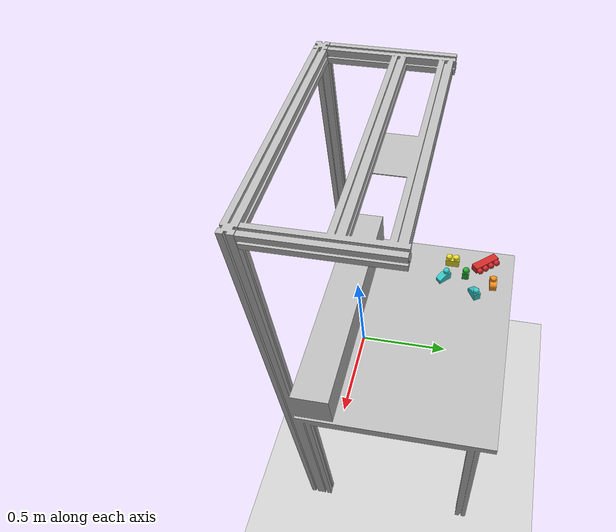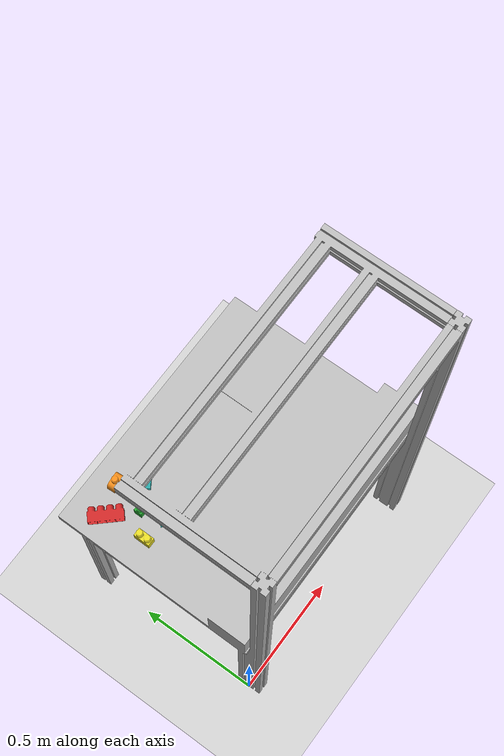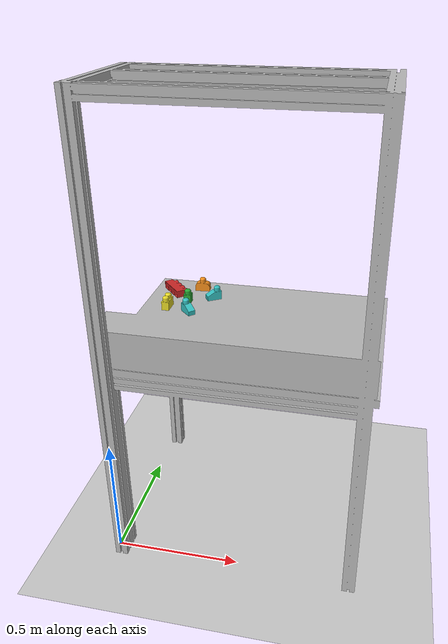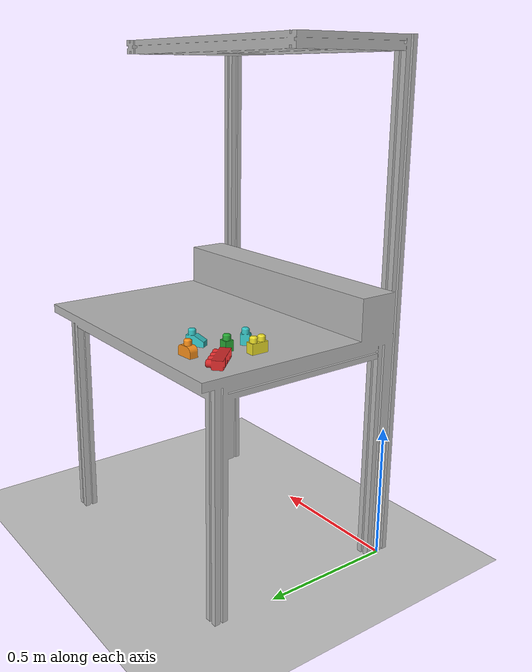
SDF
<?xml version="1.0" ?>
<sdf version="1.4">
  <world name="default">
    <plugin name="ros_link_attacher_plugin" filename="libgazebo_ros_link_attacher.so"/>
    <physics type='ode'>
      <gravity>0 0 -9.81</gravity>
      <!-- max step size has to be a multiple of the desired task rate-->
      <max_step_size>0.001</max_step_size>
      <real_time_factor>1</real_time_factor>
    </physics>
    <!-- A global light source -->
    <include>
      <uri>model://sun</uri>
    </include>
     <gui>
    <camera name="gzclient_camera">
      <pose>1. 3.2 2.2 0. 0.4 -1.75</pose>
    </camera>
    </gui>
    <!-- A ground plane -->
    <include>
      <uri>model://ground_plane</uri>
    </include>
    <include>
      <name>tavolo</name>
      <uri>model://tavolo</uri>
      <pose>0.0 0.0 0.0 0 0 0</pose>
    </include>

    <include>
      <name>X1-Y2-Z2-CHAMFER 1</name>
      <uri>model://X1-Y2-Z2-CHAMFER</uri>
      <pose>0.19 0.48 0.87 0 0 0.8</pose>
    </include>
    <include>
      <name>X1-Y2-Z2-CHAMFER 2</name>
      <uri>model://X1-Y2-Z2-CHAMFER</uri>
      <pose>0.26 0.63 0.87 0 0 -1</pose>
    </include>
    <include>
      <name>X1-Y2-Z2</name>
      <uri>model://X1-Y2-Z2</uri>
      <pose>0.09 0.51 0.87 0 0 0</pose>
    </include>
    <include>
      <name>X1-Y4-Z2</name>
      <uri>model://X1-Y4-Z2</uri>
      <pose>0.06 0.65 0.885 0 -1.5707963 -2.4</pose>
    </include>
    <include>
      <name>X1-Y2-Z2-TWINFILLET</name>
      <uri>model://X1-Y2-Z2-TWINFILLET</uri>
      <pose>0.19 0.71 0.87 0 0 -1.5</pose>
    </include>
    <include>
      <name>X1-Y1-Z2</name>
      <uri>model://X1-Y1-Z2</uri>
      <pose>0.16 0.58 0.87 0 0 0</pose>
    </include>

  </world>
</sdf>

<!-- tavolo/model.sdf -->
<sdf version="1.4">

<physics type="ode">

      <ode>

        <constraints>
          <contact_max_correcting_vel>0.1</contact_max_correcting_vel>
          <contact_surface_layer>0.0001</contact_surface_layer>
        </constraints>
      </ode>
	<max_contacts>10</max_contacts>
	</physics>

	<model name="tavolo">
	    <static>true</static>
		<link name="link">

		     <collision name="base">
			<pose>0.5 0.4 0.85 0 0 0</pose>
			<geometry>
			  <box>
			    <size>1 0.8 0.04</size>
			  </box>
			</geometry>

				<!-- see https://gazebosim.org/tutorials?tut=physics_params&cat=physics -->
				 <surface>
				  <bounce>
				    <restitution_coefficient>0.01</restitution_coefficient>
				    <threshold>5.0</threshold>
				  </bounce>
				  <friction>
				    <ode>
				      <mu>50</mu>
				      <mu2>70</mu2>
				    </ode>
				  </friction>
				  <contact>
				     <ode>
					<max_vel>0.1</max_vel>
					<min_depth>0.001</min_depth>
				        <kp>1000000.0</kp>
					<kd>1000.0</kd>
				      </ode>
			    	</contact>
				</surface>

		     	</collision>

	     			<collision name="box">
				<pose>0.5 0.08 0.95 0 0 0</pose>
				<geometry>
				  <box>
				    <size>1 0.15 0.15</size>
				  </box>
				</geometry>

				 <surface>
				  <bounce>
				    <restitution_coefficient>0.01</restitution_coefficient>
				    <threshold>5.0</threshold>
				  </bounce>
				  <friction>
				    <ode>
				      <mu>1</mu>
				      <mu2>1</mu2>
				    </ode>
				  </friction>
				  <contact>
				     <ode>
					<max_vel>0.1</max_vel>
					<min_depth>0.001</min_depth>
				        <kp>1000000.0</kp>
					<kd>1000.0</kd>
				      </ode>
			            </contact>
				</surface>

			      </collision>

			<visual name="visual">
				<geometry>
					<mesh>
						<uri>model://tavolo/mesh/tavolo.stl</uri>
                                                <scale>0.001 0.001 0.001</scale>
					</mesh>
				</geometry>
			</visual>
		</link>
	</model>
</sdf>

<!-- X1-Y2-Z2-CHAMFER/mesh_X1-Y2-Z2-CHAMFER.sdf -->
<sdf version="1.6">

         <model name="mesh">
             <static>0</static>
             <self_collide>0</self_collide>
             <allow_auto_disable>1</allow_auto_disable>

                <pose>0 0 0 0 -0 0</pose>

             <link name="link">

                 <gravity>1</gravity>
                 <self_collide>0</self_collide>
                 <kinematic>0</kinematic>

                <pose>0 0 0 0 -0 0</pose>

                <inertial>
                    <!-- Volume:  1.1813374000e-05 -->
                    <mass>0.001</mass>

                    <!-- Center of mass:  5.4000000000e-07  4.8881100000e-03  2.4580050000e-02 -->
                    <pose>0 0 0 0 0 0</pose>

                    <!-- Inertia matrix -->
                    <inertia>
                        <ixx>0</ixx>
                        <ixy>0</ixy>
                        <ixz>0</ixz>
                        <iyy>0</iyy>
                        <iyz>0</iyz>
                        <izz>0</izz>
                    </inertia>
                </inertial>

                 <collision name="collision">
                     <!--
                         Maximum number of contacts allowed between two entities.
                         This value overrides the max_contacts element defined in physics.
                     -->
                     <max_contacts>20</max_contacts>

                    <pose>0 0 0 0 -0 0</pose>

                     <geometry>
                         <mesh>
                             <uri>model://X1-Y2-Z2-CHAMFER/mesh/X1-Y2-Z2-CHAMFER.stl</uri>
                             <!-- Scaling factor applied to the mesh -->
                             <scale>1.0 1.0 1.0</scale>
                         </mesh>
                     </geometry>
                     <!-- http://sdformat.org/spec?ver=1.6&elem=collision#surface_soft_contact -->
                     <surface>
                        <contact>
                            <ode>
                                <max_vel>0.0</max_vel>
                                <min_depth>0.008</min_depth>
                            </ode>
                        </contact>
                    </surface>
                 </collision>

                 <visual name="visual">
                     <cast_shadows>1</cast_shadows>
                     <transparency>0</transparency>

                    <pose>0 0 0 0 -0 0</pose>

                     <material>

                         <script>
                             <uri>file://media/materials/scripts/gazebo.material</uri>
                             <name>Gazebo/Turquoise</name>
                         </script>
                         <shader type="vertex">
                           <normal_map>__default__</normal_map>
                         </shader>

                     </material>

                     <geometry>
                         <mesh>
                             <uri>model://X1-Y2-Z2-CHAMFER/mesh/X1-Y2-Z2-CHAMFER.stl</uri>
                             <!-- Scaling factor applied to the mesh -->
                             <scale>1.0 1.0 1.0</scale>
                         </mesh>
                     </geometry>
                 </visual>
             </link>
         </model>
     </sdf>

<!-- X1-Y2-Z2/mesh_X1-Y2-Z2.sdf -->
<sdf version="1.6">

         <model name="mesh_X1-Y2-Z2">
             <static>0</static>
             <self_collide>0</self_collide>
             <allow_auto_disable>1</allow_auto_disable>

            <pose>0 0 0 0 -0 0</pose>

             <link name="link">

                 <gravity>1</gravity>
                 <self_collide>0</self_collide>
                 <kinematic>0</kinematic>

                 <inertial>
                    <!-- Volume:  1.4626929000e-05 -->
                    <mass>0.001</mass>

                    <!-- Center of mass:  9.6000000000e-07  5.6000000000e-07  2.8797740000e-02 -->
                    <pose>0 0 -0.064e-02 0 0 0</pose>

                    <!-- Inertia matrix -->
                    <inertia>
                        <ixx>0</ixx>
                        <ixy>0</ixy>
                        <ixz>0</ixz>
                        <iyy>0</iyy>
                        <iyz>0</iyz>
                        <izz>0</izz>
                    </inertia>
                </inertial>

                 <collision name="collision">
                     <!--
                         Maximum number of contacts allowed between two entities.
                         This value overrides the max_contacts element defined in physics.
                     -->
                     <max_contacts>20</max_contacts>

                    <pose>0 0 0 0 -0 0</pose>

                     <geometry>
                         <mesh>
                             <uri>model://X1-Y2-Z2/mesh/X1-Y2-Z2.stl</uri>
                             <!-- Scaling factor applied to the mesh -->
                             <scale>1.0 1.0 1.0</scale>
                         </mesh>
                     </geometry>
                     <!-- http://sdformat.org/spec?ver=1.6&elem=collision#surface_soft_contact -->
                     <surface>
                        <contact>
                            <ode>
                                <max_vel>0.0</max_vel>
                                <min_depth>0.008</min_depth>
                            </ode>
                        </contact>
                    </surface>
                 </collision>

                 <visual name="visual">
                     <cast_shadows>1</cast_shadows>
                     <transparency>0</transparency>

                   <pose>0 0 0 0 -0 0</pose>

                     <material>

                         <script>
                             <uri>file://media/materials/scripts/gazebo.material</uri>
                             <name>Gazebo/Yellow</name>
                         </script>
                         <shader type="vertex">
                           <normal_map>__default__</normal_map>
                         </shader>

                     </material>

                     <geometry>
                         <mesh>
                             <uri>model://X1-Y2-Z2/mesh/X1-Y2-Z2.stl</uri>
                             <!-- Scaling factor applied to the mesh -->
                             <scale>1.0 1.0 1.0</scale>
                         </mesh>
                     </geometry>
                 </visual>
             </link>
         </model>
     </sdf>

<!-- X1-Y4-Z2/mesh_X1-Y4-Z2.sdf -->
<sdf version="1.6">

         <model name="mesh_X1-Y4-Z2">
             <static>0</static>
             <self_collide>0</self_collide>
             <allow_auto_disable>1</allow_auto_disable>

            <pose>0 0 0 0 -0 0</pose>

             <link name="link">

                 <gravity>1</gravity>
                 <self_collide>0</self_collide>
                 <kinematic>0</kinematic>

                <pose>0 0 0 0 -0 0</pose>

                <inertial>
                    <!-- Volume:  2.8117754000e-05 -->
                    <mass>0.001</mass>

                    <!-- Center of mass: -4.0000000000e-08 -1.8759000000e-04  2.9235880000e-02 -->
                    <pose>0 0 -0.064e-02 0 0 0</pose>

                    <!-- Inertia matrix -->
                    <inertia>
                        <ixx>0</ixx>
                        <ixy>0</ixy>
                        <ixz>0</ixz>
                        <iyy>0</iyy>
                        <iyz>0</iyz>
                        <izz>0</izz>
                    </inertia>
                </inertial>

                 <collision name="collision">
                     <!--
                         Maximum number of contacts allowed between two entities.
                         This value overrides the max_contacts element defined in physics.
                     -->
                     <max_contacts>20</max_contacts>

                    <pose>0 0 0 0 -0 0</pose>

                     <geometry>
                         <mesh>
                             <uri>model://X1-Y4-Z2/mesh/X1-Y4-Z2.stl</uri>
                             <!-- Scaling factor applied to the mesh -->
                             <scale>1.0 1.0 1.0</scale>
                         </mesh>
                     </geometry>
                     <!-- http://sdformat.org/spec?ver=1.6&elem=collision#surface_soft_contact -->
                     <surface>
                        <contact>
                            <ode>
                                <max_vel>0.0</max_vel>
                                <min_depth>0.008</min_depth>
                            </ode>
                        </contact>
                    </surface>
                 </collision>

                 <visual name="visual">
                     <cast_shadows>1</cast_shadows>
                     <transparency>0</transparency>

                     <pose>0 0 0 0 -0 0</pose>

                     <material>

                         <script>
                             <uri>file://media/materials/scripts/gazebo.material</uri>
                             <name>Gazebo/Red</name>
                         </script>
                         <shader type="vertex">
                           <normal_map>__default__</normal_map>
                         </shader>

                     </material>

                     <geometry>
                         <mesh>
                             <uri>model://X1-Y4-Z2/mesh/X1-Y4-Z2.stl</uri>
                             <!-- Scaling factor applied to the mesh -->
                             <scale>1.0 1.0 1.0</scale>
                         </mesh>
                     </geometry>
                 </visual>
             </link>
         </model>
     </sdf>

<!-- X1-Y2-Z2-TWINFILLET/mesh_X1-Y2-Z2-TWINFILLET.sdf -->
<sdf version="1.6">

         <model name="mesh">
             <static>0</static>
             <self_collide>0</self_collide>
             <allow_auto_disable>1</allow_auto_disable>

            <pose>0 0 0 0 -0 0</pose>

             <link name="link">

                 <gravity>1</gravity>
                 <self_collide>0</self_collide>
                 <kinematic>0</kinematic>

                <pose>0 0 0 0 -0 0</pose>

                <inertial>
                    <!-- Volume:  1.1106156000e-05 -->
                    <mass>0.001</mass>

                    <!-- Center of mass:  8.2000000000e-07 -2.6000000000e-06  2.5677030000e-02 -->
                    <pose>0 0 -0.064e-02 0 0 0</pose>

                    <!-- Inertia matrix -->
                    <inertia>
                        <ixx>0</ixx>
                        <ixy>0</ixy>
                        <ixz>0</ixz>
                        <iyy>0</iyy>
                        <iyz>0</iyz>
                        <izz>0</izz>
                    </inertia>
                </inertial>

                 <collision name="collision">
                     <!--
                         Maximum number of contacts allowed between two entities.
                         This value overrides the max_contacts element defined in physics.
                     -->
                     <max_contacts>20</max_contacts>

                    <pose>0 0 0 0 -0 0</pose>

                     <geometry>
                         <mesh>
                             <uri>model://X1-Y2-Z2-TWINFILLET/mesh/X1-Y2-Z2-TWINFILLET.stl</uri>
                             <!-- Scaling factor applied to the mesh -->
                             <scale>1.0 1.0 1.0</scale>
                         </mesh>
                     </geometry>
                     <!-- http://sdformat.org/spec?ver=1.6&elem=collision#surface_soft_contact -->
                     <surface>
                        <contact>
                            <ode>
                                <max_vel>0.0</max_vel>
                                <min_depth>0.008</min_depth>
                            </ode>
                        </contact>
                    </surface>
                 </collision>

                 <visual name="visual">
                     <cast_shadows>1</cast_shadows>
                     <transparency>0</transparency>

                     <pose>0 0 0 0 -0 0</pose>

                     <material>

                         <script>
                             <uri>file://media/materials/scripts/gazebo.material</uri>
                             <name>Gazebo/Orange</name>
                         </script>
                         <shader type="vertex">
                           <normal_map>__default__</normal_map>
                         </shader>

                     </material>

                     <geometry>
                         <mesh>
                             <uri>model://X1-Y2-Z2-TWINFILLET/mesh/X1-Y2-Z2-TWINFILLET.stl</uri>
                             <!-- Scaling factor applied to the mesh -->
                             <scale>1.0 1.0 1.0</scale>
                         </mesh>
                     </geometry>
                 </visual>
             </link>
         </model>
     </sdf>

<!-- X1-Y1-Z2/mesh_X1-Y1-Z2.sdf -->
<sdf version="1.6">

    <model name="mesh_X1-Y1-Z2">
        <static>0</static>
        <self_collide>0</self_collide>
        <allow_auto_disable>1</allow_auto_disable>

        <pose>0 0 0 0 -0 0</pose>

        <link name="link">

            <gravity>1</gravity>
            <self_collide>0</self_collide>
            <kinematic>0</kinematic>

            <inertial>
                <mass>0.001</mass>

                <!-- Center of mass:  1.4400000000e-06 -5.0000000000e-08  2.7859970000e-02 -->
                <pose>0 0 -0.064e-02 0 0 0</pose>

                <!-- Inertia matrix -->
                <inertia>
                    <ixx>0</ixx>
                    <ixy>0</ixy>
                    <ixz>0</ixz>
                    <iyy>0</iyy>
                    <iyz>0</iyz>
                    <izz>0</izz>
                </inertia>
            </inertial>

            <collision name="collision">
                <!-- Maximum number of contacts allowed between two entities.
                     This value overrides the max_contacts element defined in physics. -->
                <max_contacts>20</max_contacts>

                <pose>0 0 0 0 -0 0</pose>

                <geometry>
                    <mesh>
                        <uri>model://X1-Y1-Z2/mesh/X1-Y1-Z2.stl</uri>
                        <!-- Scaling factor applied to the mesh -->
                        <scale>1.0 1.0 1.0</scale>
                    </mesh>
                </geometry>

                <!-- http://sdformat.org/spec?ver=1.6&elem=collision#surface_soft_contact -->
                <surface>
                    <contact>
                        <ode>
                            <max_vel>0.0</max_vel>
                            <min_depth>0.008</min_depth>
                        </ode>
			    	</contact>
                </surface>
            </collision>

            <visual name="visual">
                <cast_shadows>1</cast_shadows>
                <transparency>0</transparency>

                <pose>0 0 0 0 -0 0</pose>
                <material>

                    <script>
                        <uri>file://media/materials/scripts/gazebo.material</uri>
                        <name>Gazebo/Green</name>
                    </script>
                    <shader type="vertex">
                        <normal_map>__default__</normal_map>
                    </shader>

                </material>

                <geometry>
                    <mesh>
                        <uri>model://X1-Y1-Z2/mesh/X1-Y1-Z2.stl</uri>
                        <!-- Scaling factor applied to the mesh -->
                        <scale>1.0 1.0 1.0</scale>
                    </mesh>
                </geometry>
            </visual>

        </link>

    </model>
</sdf>
